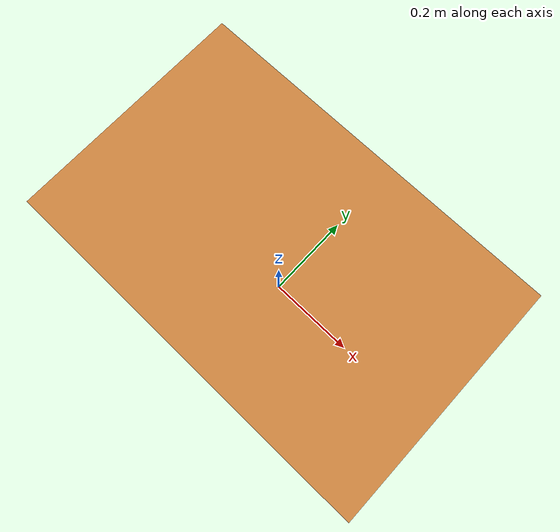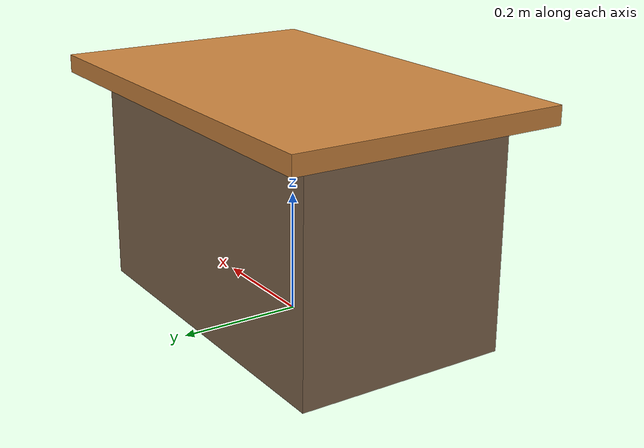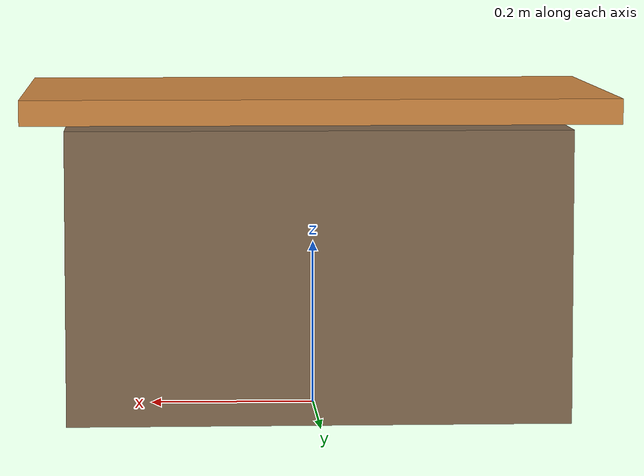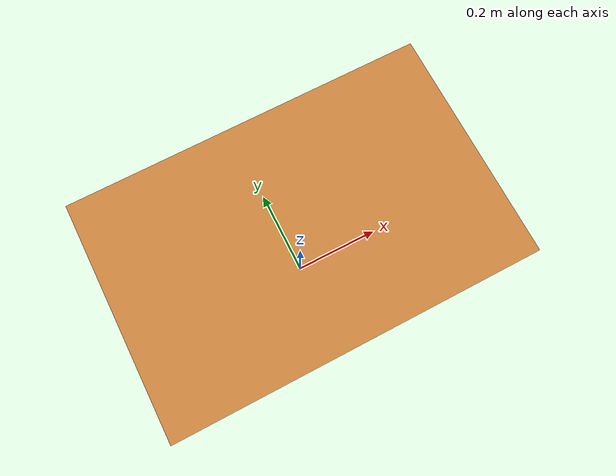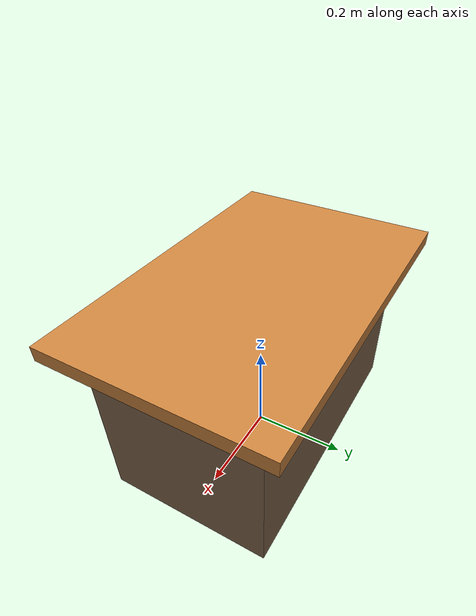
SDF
<?xml version="1.0" ?>
<sdf version="1.6">
  <model name="classroom_desk">

    <!-- 桌面 -->
    <link name="desk_top">
      <inertial>
        <mass>5</mass>
        <inertia>
          <ixx>0.1</ixx><ixy>0</ixy><ixz>0</ixz>
          <iyy>0.1</iyy><iyz>0</iyz>
          <izz>0.1</izz>
        </inertia>
      </inertial>
      <collision name="collision">
        <geometry><box><size>0.7 0.45 0.03</size></box></geometry>
      </collision>
      <visual name="visual">
        <pose>0 0 0.375 0 0 0</pose>
        <geometry><box><size>0.7 0.45 0.03</size></box></geometry>
        <material>
          <ambient>0.804 0.522 0.247 1</ambient>
          <diffuse>0.804 0.522 0.247 1</diffuse>
        </material>
      </visual>
    </link>

    <!-- 桌腿 -->
    <link name="desk_legs">
      <pose>0 0 0.175 0 0 0</pose>
      <collision name="collision">
        <geometry><box><size>0.6 0.35 0.35</size></box></geometry>
      </collision>
      <visual name="visual">
        <geometry><box><size>0.6 0.35 0.35</size></box></geometry>
        <material>
          <ambient>0.5 0.4 0.3 1</ambient>
          <diffuse>0.5 0.4 0.3 1</diffuse>
        </material>
      </visual>
    </link>

    <joint name="desk_joint" type="fixed">
      <parent>desk_top</parent>
      <child>desk_legs</child>
    </joint>

  </model>
</sdf>
